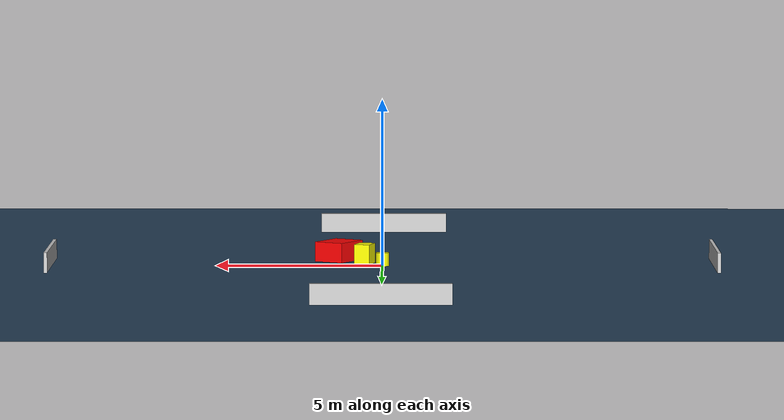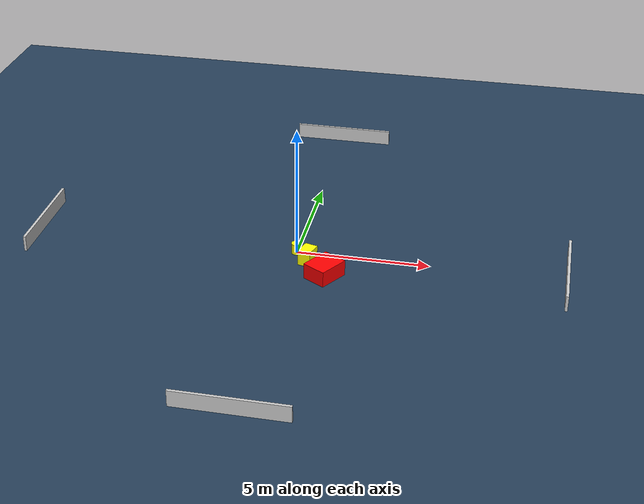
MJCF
<?xml version="1.0" ?>
<mujoco model="generated_environment">
  <option timestep="0.01" integrator="RK4" cone="elliptic"/>
  <default>
    <geom density="1"/>
  </default>
  <asset>
    <texture builtin="gradient" height="3072" name="skybox" rgb1="0.3 0.5 0.7" rgb2="0 0 0" type="skybox" width="512"/>
    <texture builtin="checker" height="300" name="groundplane" rgb1="0.2 0.3 0.4" rgb2="0.1 0.2 0.3" type="2d" width="300"/>
    <material name="groundplane" reflectance="0.2" texrepeat="5 5" texture="groundplane"/>
  </asset>
  <worldbody>
    <light dir="0 0 -1" directional="true" pos="0 0 1.5"/>
    <geom condim="3" friction="0.5 0.005 0.001" material="groundplane" name="floor" pos="0 0 0" size="0 0 0.05" type="plane"/>
    <body name="walls">
      <geom name="wall_1" condim="4" pos="-10.0 0.0 0.3" rgba="0.800000011920929 0.800000011920929 0.800000011920929 1.0" size="0.05 2.0 0.3" type="box"/>
      <geom name="wall_2" condim="4" pos="10.0 0.0 0.3" rgba="0.800000011920929 0.800000011920929 0.800000011920929 1.0" size="0.05 2.0 0.3" type="box"/>
      <geom name="wall_3" condim="4" pos="0.0 -10.0 0.3" rgba="0.800000011920929 0.800000011920929 0.800000011920929 1.0" size="2.0 0.05 0.3" type="box"/>
      <geom name="wall_4" condim="4" pos="0.0 10.0 0.3" rgba="0.800000011920929 0.800000011920929 0.800000011920929 1.0" size="2.0 0.05 0.3" type="box"/>
    </body>
    <body name="robot">
      <joint name="joint_x" type="slide" pos="0 0 0" axis="1 0 0"/>
      <joint name="joint_y" type="slide" pos="0 0 0" axis="0 1 0"/>
      <geom name="robot" type="cylinder" pos="0.0 0.0 0.2" size="0.2 0.2 0.0" mass="5.0" friction="1.0 0.005 0.0001" condim="4" rgba="1.0 1.0 0.0 1.0"/>
    </body>
    <body name="obstacle_1_movable">
      <geom name="obstacle_1_movable" condim="4" pos="0.5430121759380566 -0.6147413492405689 0.3" euler="0 0 163.76674152677694" friction="0.0 0.005 0.001" rgba="1.0 1.0 0.0 1.0" size="0.24097809538032572 0.3144095190709245 0.3" type="box" mass="0.1"/>
      <joint type="free"/>
    </body>
    <body name="obstacle_2_static">
      <geom name="obstacle_2_static" condim="4" pos="1.331397558311949 -1.4635192732219444 0.3" euler="0 0 148.58579102654724" friction="0.0 0.005 0.001" rgba="1.0 0.0 0.0 1.0" size="0.4745344309032913 0.5938304570032614 0.3" type="box"/>
    </body>
  </worldbody>
  <actuator>
    <motor name="actuator_x" joint="joint_x" gear="1" ctrlrange="-1 1"/>
    <motor name="actuator_y" joint="joint_y" gear="1" ctrlrange="-1 1"/>
  </actuator>
</mujoco>
